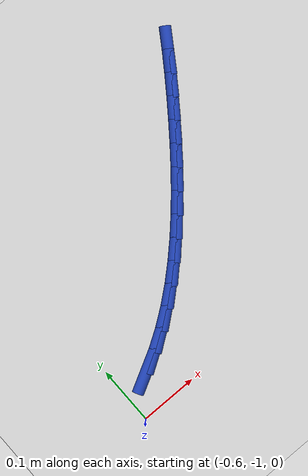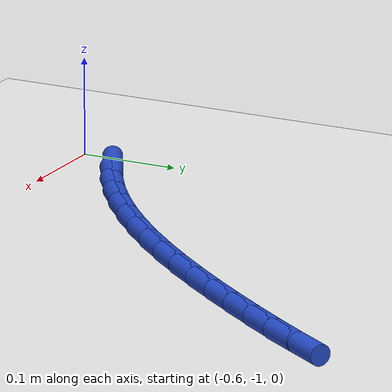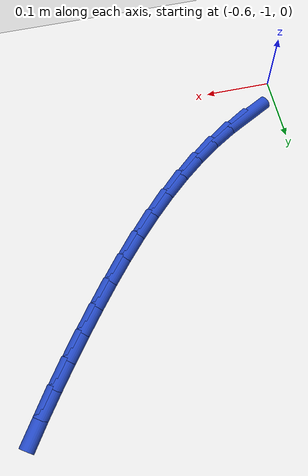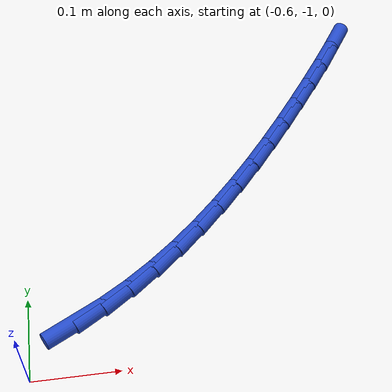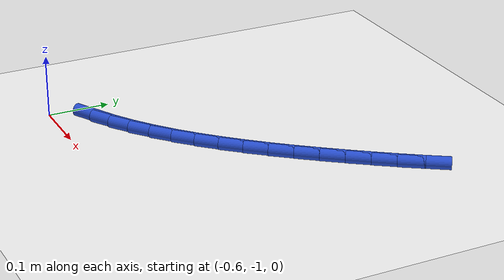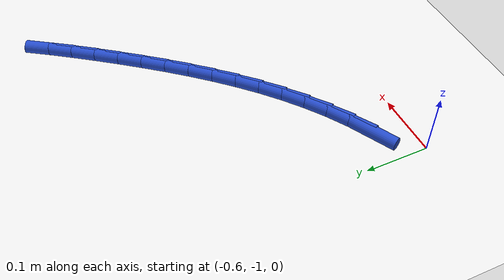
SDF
<sdf version="1.6">
 <world name="default">
  <model name="ground_plane">
   <static>1</static>
   <link name="link">
    <collision name="collision">
     <geometry><plane><normal>0 0 1</normal><size>100 100</size></plane></geometry>
     <surface><friction><ode><mu>100</mu><mu2>50</mu2></ode></friction></surface>
    </collision>
    <visual name="visual">
     <cast_shadows>0</cast_shadows>
     <geometry><plane><normal>0 0 1</normal><size>100 100</size></plane></geometry>
     <material>
      <script><uri>file://media/materials/scripts/gazebo.material</uri><name>Gazebo/WhiteGlow</name></script>
     </material>
    </visual>
   </link>
  </model>
  <model name="line">
   <link name="link_150">
    <pose>-0.546622240272392 -0.9403917222108025 0.01 0 1.57 0.4917728957265292</pose>
    <collision name="collision">
     <geometry><cylinder><radius>0.01</radius><length>0.08</length></cylinder></geometry>
    </collision>
    <visual name="visual">
     <material>
      <script><name>Gazebo/Blue</name><uri>file://media/materials/scripts/gazebo.material</uri></script>
     </material>
     <geometry><cylinder><radius>0.01</radius><length>0.08</length></cylinder></geometry>
    </visual>
   </link>
   <link name="link_151">
    <pose>-0.5146603389836599 -0.9232707674383875 0.01 0 1.57 0.5622657226901974</pose>
    <collision name="collision">
     <geometry><cylinder><radius>0.01</radius><length>0.08</length></cylinder></geometry>
    </collision>
    <visual name="visual">
     <material>
      <script><name>Gazebo/Blue</name><uri>file://media/materials/scripts/gazebo.material</uri></script>
     </material>
     <geometry><cylinder><radius>0.01</radius><length>0.08</length></cylinder></geometry>
    </visual>
   </link>
   <link name="link_152">
    <pose>-0.483741524576677 -0.9037885030594536 0.01 0 1.57 0.6258704495760032</pose>
    <collision name="collision">
     <geometry><cylinder><radius>0.01</radius><length>0.08</length></cylinder></geometry>
    </collision>
    <visual name="visual">
     <material>
      <script><name>Gazebo/Blue</name><uri>file://media/materials/scripts/gazebo.material</uri></script>
     </material>
     <geometry><cylinder><radius>0.01</radius><length>0.08</length></cylinder></geometry>
    </visual>
   </link>
   <link name="link_153">
    <pose>-0.453823031774548 -0.8821631523929815 0.01 0 1.57 0.682721015889816</pose>
    <collision name="collision">
     <geometry><cylinder><radius>0.01</radius><length>0.08</length></cylinder></geometry>
    </collision>
    <visual name="visual">
     <material>
      <script><name>Gazebo/Blue</name><uri>file://media/materials/scripts/gazebo.material</uri></script>
     </material>
     <geometry><cylinder><radius>0.01</radius><length>0.08</length></cylinder></geometry>
    </visual>
   </link>
   <link name="link_154">
    <pose>-0.42486209530037794 -0.858612938757953 0.01 0 1.57 0.7331168586602573</pose>
    <collision name="collision">
     <geometry><cylinder><radius>0.01</radius><length>0.08</length></cylinder></geometry>
    </collision>
    <visual name="visual">
     <material>
      <script><name>Gazebo/Blue</name><uri>file://media/materials/scripts/gazebo.material</uri></script>
     </material>
     <geometry><cylinder><radius>0.01</radius><length>0.08</length></cylinder></geometry>
    </visual>
   </link>
   <link name="link_155">
    <pose>-0.3968159498772723 -0.83335608547335 0.01 0 1.57 0.7774447908335291</pose>
    <collision name="collision">
     <geometry><cylinder><radius>0.01</radius><length>0.08</length></cylinder></geometry>
    </collision>
    <visual name="visual">
     <material>
      <script><name>Gazebo/Blue</name><uri>file://media/materials/scripts/gazebo.material</uri></script>
     </material>
     <geometry><cylinder><radius>0.01</radius><length>0.08</length></cylinder></geometry>
    </visual>
   </link>
   <link name="link_156">
    <pose>-0.36964183022833613 -0.8066108158581539 0.01 0 1.57 0.8161205318452553</pose>
    <collision name="collision">
     <geometry><cylinder><radius>0.01</radius><length>0.08</length></cylinder></geometry>
    </collision>
    <visual name="visual">
     <material>
      <script><name>Gazebo/Blue</name><uri>file://media/materials/scripts/gazebo.material</uri></script>
     </material>
     <geometry><cylinder><radius>0.01</radius><length>0.08</length></cylinder></geometry>
    </visual>
   </link>
   <link name="link_157">
    <pose>-0.34329697107667395 -0.7785953532313458 0.01 0 1.57 0.8495483223207545</pose>
    <collision name="collision">
     <geometry><cylinder><radius>0.01</radius><length>0.08</length></cylinder></geometry>
    </collision>
    <visual name="visual">
     <material>
      <script><name>Gazebo/Blue</name><uri>file://media/materials/scripts/gazebo.material</uri></script>
     </material>
     <geometry><cylinder><radius>0.01</radius><length>0.08</length></cylinder></geometry>
    </visual>
   </link>
   <link name="link_158">
    <pose>-0.31773860714539104 -0.7495279209119075 0.01 0 1.57 0.8780947192121157</pose>
    <collision name="collision">
     <geometry><cylinder><radius>0.01</radius><length>0.08</length></cylinder></geometry>
    </collision>
    <visual name="visual">
     <material>
      <script><name>Gazebo/Blue</name><uri>file://media/materials/scripts/gazebo.material</uri></script>
     </material>
     <geometry><cylinder><radius>0.01</radius><length>0.08</length></cylinder></geometry>
    </visual>
   </link>
   <link name="link_159">
    <pose>-0.2929239731575919 -0.7196267422188202 0.01 0 1.57 0.9020723024014216</pose>
    <collision name="collision">
     <geometry><cylinder><radius>0.01</radius><length>0.08</length></cylinder></geometry>
    </collision>
    <visual name="visual">
     <material>
      <script><name>Gazebo/Blue</name><uri>file://media/materials/scripts/gazebo.material</uri></script>
     </material>
     <geometry><cylinder><radius>0.01</radius><length>0.08</length></cylinder></geometry>
    </visual>
   </link>
   <link name="link_160">
    <pose>-0.26881030383638244 -0.6891100404710659 0.01 0 1.57 0.921729551161728</pose>
    <collision name="collision">
     <geometry><cylinder><radius>0.01</radius><length>0.08</length></cylinder></geometry>
    </collision>
    <visual name="visual">
     <material>
      <script><name>Gazebo/Blue</name><uri>file://media/materials/scripts/gazebo.material</uri></script>
     </material>
     <geometry><cylinder><radius>0.01</radius><length>0.08</length></cylinder></geometry>
    </visual>
   </link>
   <link name="link_161">
    <pose>-0.2453548339048673 -0.6581960389876262 0.01 0 1.57 0.9374006453859124</pose>
    <collision name="collision">
     <geometry><cylinder><radius>0.01</radius><length>0.08</length></cylinder></geometry>
    </collision>
    <visual name="visual">
     <material>
      <script><name>Gazebo/Blue</name><uri>file://media/materials/scripts/gazebo.material</uri></script>
     </material>
     <geometry><cylinder><radius>0.01</radius><length>0.08</length></cylinder></geometry>
    </visual>
   </link>
   <link name="link_162">
    <pose>-0.2225176923534376 -0.6270966860527439 0.01 0 1.57 0.9527252641982765</pose>
    <collision name="collision">
     <geometry><cylinder><radius>0.01</radius><length>0.08</length></cylinder></geometry>
    </collision>
    <visual name="visual">
     <material>
      <script><name>Gazebo/Blue</name><uri>file://media/materials/scripts/gazebo.material</uri></script>
     </material>
     <geometry><cylinder><radius>0.01</radius><length>0.08</length></cylinder></geometry>
    </visual>
   </link>
   <link name="link_163">
    <pose>-0.20032429399329899 -0.5958823843527487 0.01 0 1.57 0.971262053077272</pose>
    <collision name="collision">
     <geometry><cylinder><radius>0.01</radius><length>0.08</length></cylinder></geometry>
    </collision>
    <visual name="visual">
     <material>
      <script><name>Gazebo/Blue</name><uri>file://media/materials/scripts/gazebo.material</uri></script>
     </material>
     <geometry><cylinder><radius>0.01</radius><length>0.08</length></cylinder></geometry>
    </visual>
   </link>
   <link name="link_164">
    <pose>-0.1788646349006896 -0.5644835185170791 0.01 0 1.57 0.9932049976231629</pose>
    <collision name="collision">
     <geometry><cylinder><radius>0.01</radius><length>0.08</length></cylinder></geometry>
    </collision>
    <visual name="visual">
     <material>
      <script><name>Gazebo/Blue</name><uri>file://media/materials/scripts/gazebo.material</uri></script>
     </material>
     <geometry><cylinder><radius>0.01</radius><length>0.08</length></cylinder></geometry>
    </visual>
   </link>
  </model>
 </world>
</sdf>
